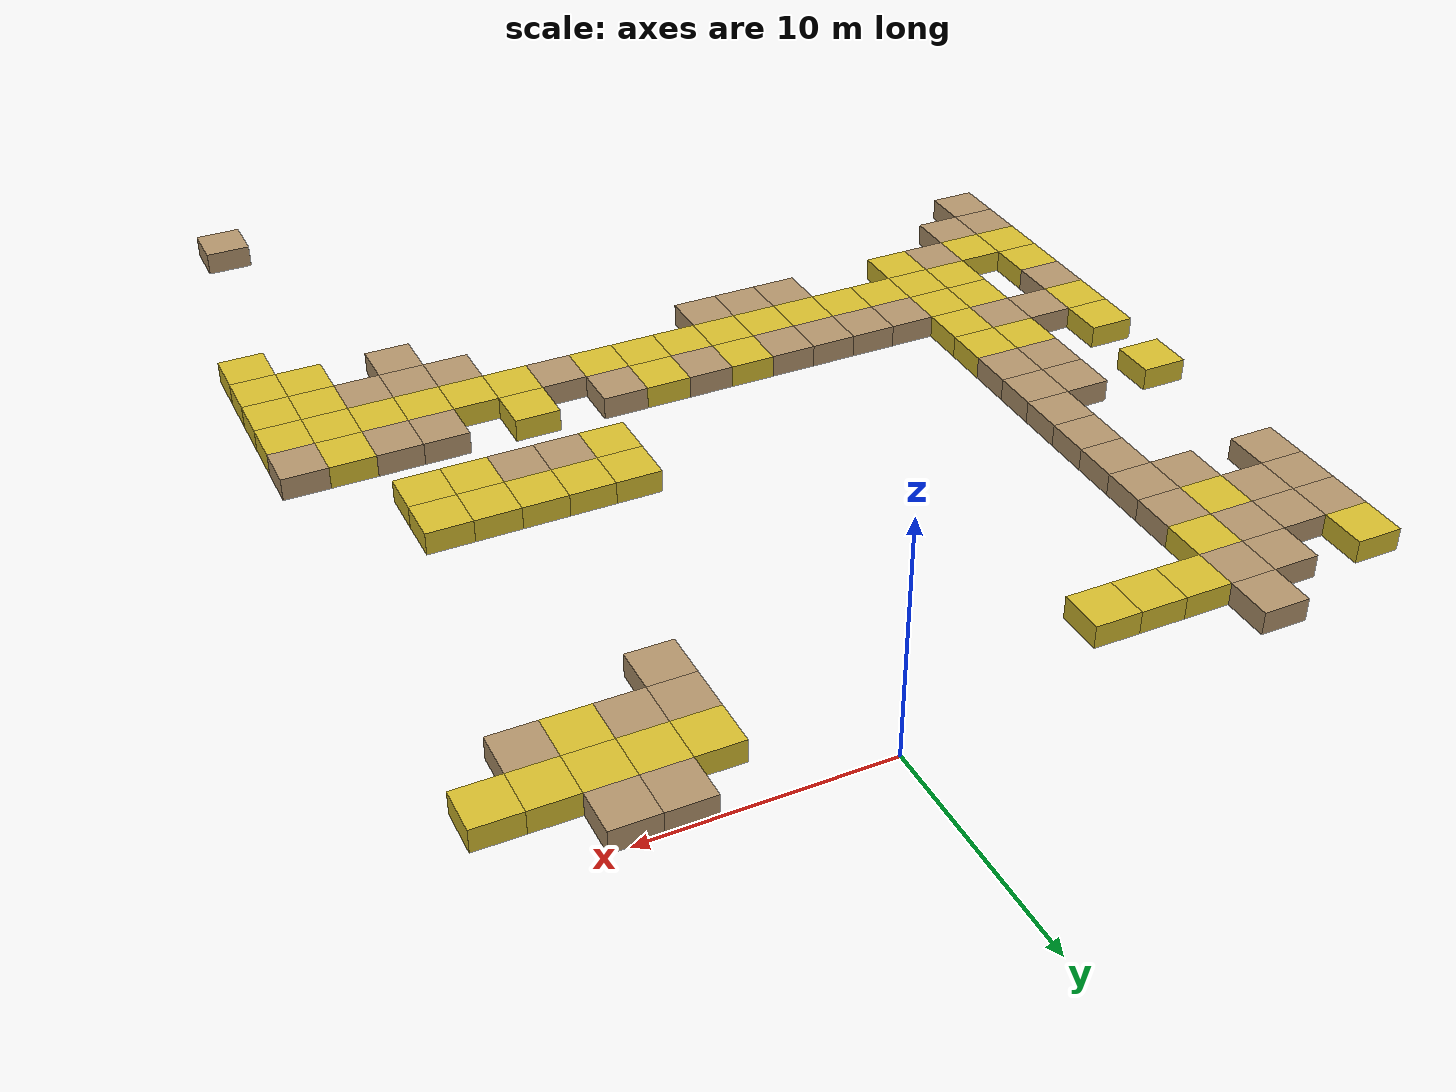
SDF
<sdf version="1.6">
 <world name="map5_factory_approx">
  <model name="map5_obstacle_blocks">
   <static>true</static>
   <link name="obs_0060_0031">
    <pose>11.790 -3.041 0.500 0 0 0</pose>
    <collision name="collision"><geometry><box><size>2.000 2.000 1.000</size></box></geometry></collision>
    <visual name="visual">
     <geometry><box><size>2.000 2.000 1.000</size></box></geometry>
     <material><ambient>0.84 0.74 0.18 1</ambient><diffuse>0.84 0.74 0.18 1</diffuse></material>
    </visual>
   </link>
   <link name="obs_0046_0040">
    <pose>-16.210 -21.041 0.500 0 0 0</pose>
    <collision name="collision"><geometry><box><size>2.000 2.000 1.000</size></box></geometry></collision>
    <visual name="visual">
     <geometry><box><size>2.000 2.000 1.000</size></box></geometry>
     <material><ambient>0.84 0.74 0.18 1</ambient><diffuse>0.84 0.74 0.18 1</diffuse></material>
    </visual>
   </link>
   <link name="obs_0058_0031">
    <pose>7.790 -3.041 0.500 0 0 0</pose>
    <collision name="collision"><geometry><box><size>2.000 2.000 1.000</size></box></geometry></collision>
    <visual name="visual">
     <geometry><box><size>2.000 2.000 1.000</size></box></geometry>
     <material><ambient>0.84 0.74 0.18 1</ambient><diffuse>0.84 0.74 0.18 1</diffuse></material>
    </visual>
   </link>
   <link name="obs_0061_0044">
    <pose>13.790 -29.041 0.500 0 0 0</pose>
    <collision name="collision"><geometry><box><size>2.000 2.000 1.000</size></box></geometry></collision>
    <visual name="visual">
     <geometry><box><size>2.000 2.000 1.000</size></box></geometry>
     <material><ambient>0.84 0.74 0.18 1</ambient><diffuse>0.84 0.74 0.18 1</diffuse></material>
    </visual>
   </link>
   <link name="obs_0051_0043">
    <pose>-6.210 -27.041 0.500 0 0 0</pose>
    <collision name="collision"><geometry><box><size>2.000 2.000 1.000</size></box></geometry></collision>
    <visual name="visual">
     <geometry><box><size>2.000 2.000 1.000</size></box></geometry>
     <material><ambient>0.84 0.74 0.18 1</ambient><diffuse>0.84 0.74 0.18 1</diffuse></material>
    </visual>
   </link>
   <link name="obs_0061_0043">
    <pose>13.790 -27.041 0.500 0 0 0</pose>
    <collision name="collision"><geometry><box><size>2.000 2.000 1.000</size></box></geometry></collision>
    <visual name="visual">
     <geometry><box><size>2.000 2.000 1.000</size></box></geometry>
     <material><ambient>0.84 0.74 0.18 1</ambient><diffuse>0.84 0.74 0.18 1</diffuse></material>
    </visual>
   </link>
   <link name="obs_0057_0031">
    <pose>5.790 -3.041 0.500 0 0 0</pose>
    <collision name="collision"><geometry><box><size>2.000 2.000 1.000</size></box></geometry></collision>
    <visual name="visual">
     <geometry><box><size>2.000 2.000 1.000</size></box></geometry>
     <material><ambient>0.84 0.74 0.18 1</ambient><diffuse>0.84 0.74 0.18 1</diffuse></material>
    </visual>
   </link>
   <link name="obs_0059_0039">
    <pose>9.790 -19.041 0.500 0 0 0</pose>
    <collision name="collision"><geometry><box><size>2.000 2.000 1.000</size></box></geometry></collision>
    <visual name="visual">
     <geometry><box><size>2.000 2.000 1.000</size></box></geometry>
     <material><ambient>0.84 0.74 0.18 1</ambient><diffuse>0.84 0.74 0.18 1</diffuse></material>
    </visual>
   </link>
   <link name="obs_0046_0041">
    <pose>-16.210 -23.041 0.500 0 0 0</pose>
    <collision name="collision"><geometry><box><size>2.000 2.000 1.000</size></box></geometry></collision>
    <visual name="visual">
     <geometry><box><size>2.000 2.000 1.000</size></box></geometry>
     <material><ambient>0.84 0.74 0.18 1</ambient><diffuse>0.84 0.74 0.18 1</diffuse></material>
    </visual>
   </link>
   <link name="obs_0056_0043">
    <pose>3.790 -27.041 0.500 0 0 0</pose>
    <collision name="collision"><geometry><box><size>2.000 2.000 1.000</size></box></geometry></collision>
    <visual name="visual">
     <geometry><box><size>2.000 2.000 1.000</size></box></geometry>
     <material><ambient>0.84 0.74 0.18 1</ambient><diffuse>0.84 0.74 0.18 1</diffuse></material>
    </visual>
   </link>
   <link name="obs_0061_0031">
    <pose>13.790 -3.041 0.500 0 0 0</pose>
    <collision name="collision"><geometry><box><size>2.000 2.000 1.000</size></box></geometry></collision>
    <visual name="visual">
     <geometry><box><size>2.000 2.000 1.000</size></box></geometry>
     <material><ambient>0.84 0.74 0.18 1</ambient><diffuse>0.84 0.74 0.18 1</diffuse></material>
    </visual>
   </link>
   <link name="obs_0059_0032">
    <pose>9.790 -5.041 0.500 0 0 0</pose>
    <collision name="collision"><geometry><box><size>2.000 2.000 1.000</size></box></geometry></collision>
    <visual name="visual">
     <geometry><box><size>2.000 2.000 1.000</size></box></geometry>
     <material><ambient>0.84 0.74 0.18 1</ambient><diffuse>0.84 0.74 0.18 1</diffuse></material>
    </visual>
   </link>
   <link name="obs_0058_0039">
    <pose>7.790 -19.041 0.500 0 0 0</pose>
    <collision name="collision"><geometry><box><size>2.000 2.000 1.000</size></box></geometry></collision>
    <visual name="visual">
     <geometry><box><size>2.000 2.000 1.000</size></box></geometry>
     <material><ambient>0.84 0.74 0.18 1</ambient><diffuse>0.84 0.74 0.18 1</diffuse></material>
    </visual>
   </link>
   <link name="obs_0060_0042">
    <pose>11.790 -25.041 0.500 0 0 0</pose>
    <collision name="collision"><geometry><box><size>2.000 2.000 1.000</size></box></geometry></collision>
    <visual name="visual">
     <geometry><box><size>2.000 2.000 1.000</size></box></geometry>
     <material><ambient>0.84 0.74 0.18 1</ambient><diffuse>0.84 0.74 0.18 1</diffuse></material>
    </visual>
   </link>
   <link name="obs_0059_0040">
    <pose>9.790 -21.041 0.500 0 0 0</pose>
    <collision name="collision"><geometry><box><size>2.000 2.000 1.000</size></box></geometry></collision>
    <visual name="visual">
     <geometry><box><size>2.000 2.000 1.000</size></box></geometry>
     <material><ambient>0.84 0.74 0.18 1</ambient><diffuse>0.84 0.74 0.18 1</diffuse></material>
    </visual>
   </link>
   <link name="obs_0053_0042">
    <pose>-2.210 -25.041 0.500 0 0 0</pose>
    <collision name="collision"><geometry><box><size>2.000 2.000 1.000</size></box></geometry></collision>
    <visual name="visual">
     <geometry><box><size>2.000 2.000 1.000</size></box></geometry>
     <material><ambient>0.84 0.74 0.18 1</ambient><diffuse>0.84 0.74 0.18 1</diffuse></material>
    </visual>
   </link>
   <link name="obs_0049_0031">
    <pose>-10.210 -3.041 0.500 0 0 0</pose>
    <collision name="collision"><geometry><box><size>2.000 2.000 1.000</size></box></geometry></collision>
    <visual name="visual">
     <geometry><box><size>2.000 2.000 1.000</size></box></geometry>
     <material><ambient>0.84 0.74 0.18 1</ambient><diffuse>0.84 0.74 0.18 1</diffuse></material>
    </visual>
   </link>
   <link name="obs_0047_0031">
    <pose>-14.210 -3.041 0.500 0 0 0</pose>
    <collision name="collision"><geometry><box><size>2.000 2.000 1.000</size></box></geometry></collision>
    <visual name="visual">
     <geometry><box><size>2.000 2.000 1.000</size></box></geometry>
     <material><ambient>0.84 0.74 0.18 1</ambient><diffuse>0.84 0.74 0.18 1</diffuse></material>
    </visual>
   </link>
   <link name="obs_0059_0043">
    <pose>9.790 -27.041 0.500 0 0 0</pose>
    <collision name="collision"><geometry><box><size>2.000 2.000 1.000</size></box></geometry></collision>
    <visual name="visual">
     <geometry><box><size>2.000 2.000 1.000</size></box></geometry>
     <material><ambient>0.84 0.74 0.18 1</ambient><diffuse>0.84 0.74 0.18 1</diffuse></material>
    </visual>
   </link>
   <link name="obs_0043_0044">
    <pose>-22.210 -29.041 0.500 0 0 0</pose>
    <collision name="collision"><geometry><box><size>2.000 2.000 1.000</size></box></geometry></collision>
    <visual name="visual">
     <geometry><box><size>2.000 2.000 1.000</size></box></geometry>
     <material><ambient>0.84 0.74 0.18 1</ambient><diffuse>0.84 0.74 0.18 1</diffuse></material>
    </visual>
   </link>
   <link name="obs_0047_0043">
    <pose>-14.210 -27.041 0.500 0 0 0</pose>
    <collision name="collision"><geometry><box><size>2.000 2.000 1.000</size></box></geometry></collision>
    <visual name="visual">
     <geometry><box><size>2.000 2.000 1.000</size></box></geometry>
     <material><ambient>0.84 0.74 0.18 1</ambient><diffuse>0.84 0.74 0.18 1</diffuse></material>
    </visual>
   </link>
   <link name="obs_0057_0043">
    <pose>5.790 -27.041 0.500 0 0 0</pose>
    <collision name="collision"><geometry><box><size>2.000 2.000 1.000</size></box></geometry></collision>
    <visual name="visual">
     <geometry><box><size>2.000 2.000 1.000</size></box></geometry>
     <material><ambient>0.84 0.74 0.18 1</ambient><diffuse>0.84 0.74 0.18 1</diffuse></material>
    </visual>
   </link>
   <link name="obs_0045_0040">
    <pose>-18.210 -21.041 0.500 0 0 0</pose>
    <collision name="collision"><geometry><box><size>2.000 2.000 1.000</size></box></geometry></collision>
    <visual name="visual">
     <geometry><box><size>2.000 2.000 1.000</size></box></geometry>
     <material><ambient>0.84 0.74 0.18 1</ambient><diffuse>0.84 0.74 0.18 1</diffuse></material>
    </visual>
   </link>
   <link name="obs_0059_0031">
    <pose>9.790 -3.041 0.500 0 0 0</pose>
    <collision name="collision"><geometry><box><size>2.000 2.000 1.000</size></box></geometry></collision>
    <visual name="visual">
     <geometry><box><size>2.000 2.000 1.000</size></box></geometry>
     <material><ambient>0.84 0.74 0.18 1</ambient><diffuse>0.84 0.74 0.18 1</diffuse></material>
    </visual>
   </link>
   <link name="obs_0055_0040">
    <pose>1.790 -21.041 0.500 0 0 0</pose>
    <collision name="collision"><geometry><box><size>2.000 2.000 1.000</size></box></geometry></collision>
    <visual name="visual">
     <geometry><box><size>2.000 2.000 1.000</size></box></geometry>
     <material><ambient>0.84 0.74 0.18 1</ambient><diffuse>0.84 0.74 0.18 1</diffuse></material>
    </visual>
   </link>
   <link name="obs_0056_0042">
    <pose>3.790 -25.041 0.500 0 0 0</pose>
    <collision name="collision"><geometry><box><size>2.000 2.000 1.000</size></box></geometry></collision>
    <visual name="visual">
     <geometry><box><size>2.000 2.000 1.000</size></box></geometry>
     <material><ambient>0.84 0.74 0.18 1</ambient><diffuse>0.84 0.74 0.18 1</diffuse></material>
    </visual>
   </link>
   <link name="obs_0051_0042">
    <pose>-6.210 -25.041 0.500 0 0 0</pose>
    <collision name="collision"><geometry><box><size>2.000 2.000 1.000</size></box></geometry></collision>
    <visual name="visual">
     <geometry><box><size>2.000 2.000 1.000</size></box></geometry>
     <material><ambient>0.84 0.74 0.18 1</ambient><diffuse>0.84 0.74 0.18 1</diffuse></material>
    </visual>
   </link>
   <link name="obs_0043_0043">
    <pose>-22.210 -27.041 0.500 0 0 0</pose>
    <collision name="collision"><geometry><box><size>2.000 2.000 1.000</size></box></geometry></collision>
    <visual name="visual">
     <geometry><box><size>2.000 2.000 1.000</size></box></geometry>
     <material><ambient>0.84 0.74 0.18 1</ambient><diffuse>0.84 0.74 0.18 1</diffuse></material>
    </visual>
   </link>
   <link name="obs_0045_0033">
    <pose>-18.210 -7.041 0.500 0 0 0</pose>
    <collision name="collision"><geometry><box><size>2.000 2.000 1.000</size></box></geometry></collision>
    <visual name="visual">
     <geometry><box><size>2.000 2.000 1.000</size></box></geometry>
     <material><ambient>0.84 0.74 0.18 1</ambient><diffuse>0.84 0.74 0.18 1</diffuse></material>
    </visual>
   </link>
   <link name="obs_0049_0043">
    <pose>-10.210 -27.041 0.500 0 0 0</pose>
    <collision name="collision"><geometry><box><size>2.000 2.000 1.000</size></box></geometry></collision>
    <visual name="visual">
     <geometry><box><size>2.000 2.000 1.000</size></box></geometry>
     <material><ambient>0.84 0.74 0.18 1</ambient><diffuse>0.84 0.74 0.18 1</diffuse></material>
    </visual>
   </link>
   <link name="obs_0060_0043">
    <pose>11.790 -27.041 0.500 0 0 0</pose>
    <collision name="collision"><geometry><box><size>2.000 2.000 1.000</size></box></geometry></collision>
    <visual name="visual">
     <geometry><box><size>2.000 2.000 1.000</size></box></geometry>
     <material><ambient>0.84 0.74 0.18 1</ambient><diffuse>0.84 0.74 0.18 1</diffuse></material>
    </visual>
   </link>
   <link name="obs_0058_0040">
    <pose>7.790 -21.041 0.500 0 0 0</pose>
    <collision name="collision"><geometry><box><size>2.000 2.000 1.000</size></box></geometry></collision>
    <visual name="visual">
     <geometry><box><size>2.000 2.000 1.000</size></box></geometry>
     <material><ambient>0.84 0.74 0.18 1</ambient><diffuse>0.84 0.74 0.18 1</diffuse></material>
    </visual>
   </link>
   <link name="obs_0053_0043">
    <pose>-2.210 -27.041 0.500 0 0 0</pose>
    <collision name="collision"><geometry><box><size>2.000 2.000 1.000</size></box></geometry></collision>
    <visual name="visual">
     <geometry><box><size>2.000 2.000 1.000</size></box></geometry>
     <material><ambient>0.84 0.74 0.18 1</ambient><diffuse>0.84 0.74 0.18 1</diffuse></material>
    </visual>
   </link>
   <link name="obs_0043_0031">
    <pose>-22.210 -3.041 0.500 0 0 0</pose>
    <collision name="collision"><geometry><box><size>2.000 2.000 1.000</size></box></geometry></collision>
    <visual name="visual">
     <geometry><box><size>2.000 2.000 1.000</size></box></geometry>
     <material><ambient>0.84 0.74 0.18 1</ambient><diffuse>0.84 0.74 0.18 1</diffuse></material>
    </visual>
   </link>
   <link name="obs_0060_0045">
    <pose>11.790 -31.041 0.500 0 0 0</pose>
    <collision name="collision"><geometry><box><size>2.000 2.000 1.000</size></box></geometry></collision>
    <visual name="visual">
     <geometry><box><size>2.000 2.000 1.000</size></box></geometry>
     <material><ambient>0.84 0.74 0.18 1</ambient><diffuse>0.84 0.74 0.18 1</diffuse></material>
    </visual>
   </link>
   <link name="obs_0043_0040">
    <pose>-22.210 -21.041 0.500 0 0 0</pose>
    <collision name="collision"><geometry><box><size>2.000 2.000 1.000</size></box></geometry></collision>
    <visual name="visual">
     <geometry><box><size>2.000 2.000 1.000</size></box></geometry>
     <material><ambient>0.84 0.74 0.18 1</ambient><diffuse>0.84 0.74 0.18 1</diffuse></material>
    </visual>
   </link>
   <link name="obs_0055_0039">
    <pose>1.790 -19.041 0.500 0 0 0</pose>
    <collision name="collision"><geometry><box><size>2.000 2.000 1.000</size></box></geometry></collision>
    <visual name="visual">
     <geometry><box><size>2.000 2.000 1.000</size></box></geometry>
     <material><ambient>0.84 0.74 0.18 1</ambient><diffuse>0.84 0.74 0.18 1</diffuse></material>
    </visual>
   </link>
   <link name="obs_0046_0043">
    <pose>-16.210 -27.041 0.500 0 0 0</pose>
    <collision name="collision"><geometry><box><size>2.000 2.000 1.000</size></box></geometry></collision>
    <visual name="visual">
     <geometry><box><size>2.000 2.000 1.000</size></box></geometry>
     <material><ambient>0.84 0.74 0.18 1</ambient><diffuse>0.84 0.74 0.18 1</diffuse></material>
    </visual>
   </link>
   <link name="obs_0061_0046">
    <pose>13.790 -33.041 0.500 0 0 0</pose>
    <collision name="collision"><geometry><box><size>2.000 2.000 1.000</size></box></geometry></collision>
    <visual name="visual">
     <geometry><box><size>2.000 2.000 1.000</size></box></geometry>
     <material><ambient>0.84 0.74 0.18 1</ambient><diffuse>0.84 0.74 0.18 1</diffuse></material>
    </visual>
   </link>
   <link name="obs_0048_0031">
    <pose>-12.210 -3.041 0.500 0 0 0</pose>
    <collision name="collision"><geometry><box><size>2.000 2.000 1.000</size></box></geometry></collision>
    <visual name="visual">
     <geometry><box><size>2.000 2.000 1.000</size></box></geometry>
     <material><ambient>0.84 0.74 0.18 1</ambient><diffuse>0.84 0.74 0.18 1</diffuse></material>
    </visual>
   </link>
   <link name="obs_0056_0039">
    <pose>3.790 -19.041 0.500 0 0 0</pose>
    <collision name="collision"><geometry><box><size>2.000 2.000 1.000</size></box></geometry></collision>
    <visual name="visual">
     <geometry><box><size>2.000 2.000 1.000</size></box></geometry>
     <material><ambient>0.84 0.74 0.18 1</ambient><diffuse>0.84 0.74 0.18 1</diffuse></material>
    </visual>
   </link>
   <link name="obs_0060_0044">
    <pose>11.790 -29.041 0.500 0 0 0</pose>
    <collision name="collision"><geometry><box><size>2.000 2.000 1.000</size></box></geometry></collision>
    <visual name="visual">
     <geometry><box><size>2.000 2.000 1.000</size></box></geometry>
     <material><ambient>0.84 0.74 0.18 1</ambient><diffuse>0.84 0.74 0.18 1</diffuse></material>
    </visual>
   </link>
   <link name="obs_0043_0041">
    <pose>-22.210 -23.041 0.500 0 0 0</pose>
    <collision name="collision"><geometry><box><size>2.000 2.000 1.000</size></box></geometry></collision>
    <visual name="visual">
     <geometry><box><size>2.000 2.000 1.000</size></box></geometry>
     <material><ambient>0.84 0.74 0.18 1</ambient><diffuse>0.84 0.74 0.18 1</diffuse></material>
    </visual>
   </link>
   <link name="obs_0052_0043">
    <pose>-4.210 -27.041 0.500 0 0 0</pose>
    <collision name="collision"><geometry><box><size>2.000 2.000 1.000</size></box></geometry></collision>
    <visual name="visual">
     <geometry><box><size>2.000 2.000 1.000</size></box></geometry>
     <material><ambient>0.84 0.74 0.18 1</ambient><diffuse>0.84 0.74 0.18 1</diffuse></material>
    </visual>
   </link>
   <link name="obs_0046_0044">
    <pose>-16.210 -29.041 0.500 0 0 0</pose>
    <collision name="collision"><geometry><box><size>2.000 2.000 1.000</size></box></geometry></collision>
    <visual name="visual">
     <geometry><box><size>2.000 2.000 1.000</size></box></geometry>
     <material><ambient>0.84 0.74 0.18 1</ambient><diffuse>0.84 0.74 0.18 1</diffuse></material>
    </visual>
   </link>
   <link name="obs_0045_0043">
    <pose>-18.210 -27.041 0.500 0 0 0</pose>
    <collision name="collision"><geometry><box><size>2.000 2.000 1.000</size></box></geometry></collision>
    <visual name="visual">
     <geometry><box><size>2.000 2.000 1.000</size></box></geometry>
     <material><ambient>0.84 0.74 0.18 1</ambient><diffuse>0.84 0.74 0.18 1</diffuse></material>
    </visual>
   </link>
   <link name="obs_0048_0043">
    <pose>-12.210 -27.041 0.500 0 0 0</pose>
    <collision name="collision"><geometry><box><size>2.000 2.000 1.000</size></box></geometry></collision>
    <visual name="visual">
     <geometry><box><size>2.000 2.000 1.000</size></box></geometry>
     <material><ambient>0.84 0.74 0.18 1</ambient><diffuse>0.84 0.74 0.18 1</diffuse></material>
    </visual>
   </link>
   <link name="obs_0054_0043">
    <pose>-0.210 -27.041 0.500 0 0 0</pose>
    <collision name="collision"><geometry><box><size>2.000 2.000 1.000</size></box></geometry></collision>
    <visual name="visual">
     <geometry><box><size>2.000 2.000 1.000</size></box></geometry>
     <material><ambient>0.84 0.74 0.18 1</ambient><diffuse>0.84 0.74 0.18 1</diffuse></material>
    </visual>
   </link>
   <link name="obs_0046_0042">
    <pose>-16.210 -25.041 0.500 0 0 0</pose>
    <collision name="collision"><geometry><box><size>2.000 2.000 1.000</size></box></geometry></collision>
    <visual name="visual">
     <geometry><box><size>2.000 2.000 1.000</size></box></geometry>
     <material><ambient>0.84 0.74 0.18 1</ambient><diffuse>0.84 0.74 0.18 1</diffuse></material>
    </visual>
   </link>
   <link name="obs_0044_0044">
    <pose>-20.210 -29.041 0.500 0 0 0</pose>
    <collision name="collision"><geometry><box><size>2.000 2.000 1.000</size></box></geometry></collision>
    <visual name="visual">
     <geometry><box><size>2.000 2.000 1.000</size></box></geometry>
     <material><ambient>0.84 0.74 0.18 1</ambient><diffuse>0.84 0.74 0.18 1</diffuse></material>
    </visual>
   </link>
   <link name="obs_0043_0038">
    <pose>-22.210 -17.041 0.500 0 0 0</pose>
    <collision name="collision"><geometry><box><size>2.000 2.000 1.000</size></box></geometry></collision>
    <visual name="visual">
     <geometry><box><size>2.000 2.000 1.000</size></box></geometry>
     <material><ambient>0.84 0.74 0.18 1</ambient><diffuse>0.84 0.74 0.18 1</diffuse></material>
    </visual>
   </link>
   <link name="obs_0057_0039">
    <pose>5.790 -19.041 0.500 0 0 0</pose>
    <collision name="collision"><geometry><box><size>2.000 2.000 1.000</size></box></geometry></collision>
    <visual name="visual">
     <geometry><box><size>2.000 2.000 1.000</size></box></geometry>
     <material><ambient>0.84 0.74 0.18 1</ambient><diffuse>0.84 0.74 0.18 1</diffuse></material>
    </visual>
   </link>
   <link name="obs_0058_0043">
    <pose>7.790 -27.041 0.500 0 0 0</pose>
    <collision name="collision"><geometry><box><size>2.000 2.000 1.000</size></box></geometry></collision>
    <visual name="visual">
     <geometry><box><size>2.000 2.000 1.000</size></box></geometry>
     <material><ambient>0.84 0.74 0.18 1</ambient><diffuse>0.84 0.74 0.18 1</diffuse></material>
    </visual>
   </link>
   <link name="obs_0046_0032">
    <pose>-16.210 -5.041 0.500 0 0 0</pose>
    <collision name="collision"><geometry><box><size>2.000 2.000 1.000</size></box></geometry></collision>
    <visual name="visual">
     <geometry><box><size>2.000 2.000 1.000</size></box></geometry>
     <material><ambient>0.84 0.74 0.18 1</ambient><diffuse>0.84 0.74 0.18 1</diffuse></material>
    </visual>
   </link>
   <link name="obs_0061_0045">
    <pose>13.790 -31.041 0.500 0 0 0</pose>
    <collision name="collision"><geometry><box><size>2.000 2.000 1.000</size></box></geometry></collision>
    <visual name="visual">
     <geometry><box><size>2.000 2.000 1.000</size></box></geometry>
     <material><ambient>0.84 0.74 0.18 1</ambient><diffuse>0.84 0.74 0.18 1</diffuse></material>
    </visual>
   </link>
   <link name="obs_0050_0043">
    <pose>-8.210 -27.041 0.500 0 0 0</pose>
    <collision name="collision"><geometry><box><size>2.000 2.000 1.000</size></box></geometry></collision>
    <visual name="visual">
     <geometry><box><size>2.000 2.000 1.000</size></box></geometry>
     <material><ambient>0.84 0.74 0.18 1</ambient><diffuse>0.84 0.74 0.18 1</diffuse></material>
    </visual>
   </link>
   <link name="obs_0045_0042">
    <pose>-18.210 -25.041 0.500 0 0 0</pose>
    <collision name="collision"><geometry><box><size>2.000 2.000 1.000</size></box></geometry></collision>
    <visual name="visual">
     <geometry><box><size>2.000 2.000 1.000</size></box></geometry>
     <material><ambient>0.84 0.74 0.18 1</ambient><diffuse>0.84 0.74 0.18 1</diffuse></material>
    </visual>
   </link>
   <link name="obs_0046_0031">
    <pose>-16.210 -3.041 0.500 0 0 0</pose>
    <collision name="collision"><geometry><box><size>2.000 2.000 1.000</size></box></geometry></collision>
    <visual name="visual">
     <geometry><box><size>2.000 2.000 1.000</size></box></geometry>
     <material><ambient>0.70 0.58 0.42 1</ambient><diffuse>0.70 0.58 0.42 1</diffuse></material>
    </visual>
   </link>
   <link name="obs_0046_0030">
    <pose>-16.210 -1.041 0.500 0 0 0</pose>
    <collision name="collision"><geometry><box><size>2.000 2.000 1.000</size></box></geometry></collision>
    <visual name="visual">
     <geometry><box><size>2.000 2.000 1.000</size></box></geometry>
     <material><ambient>0.70 0.58 0.42 1</ambient><diffuse>0.70 0.58 0.42 1</diffuse></material>
    </visual>
   </link>
   <link name="obs_0045_0032">
    <pose>-18.210 -5.041 0.500 0 0 0</pose>
    <collision name="collision"><geometry><box><size>2.000 2.000 1.000</size></box></geometry></collision>
    <visual name="visual">
     <geometry><box><size>2.000 2.000 1.000</size></box></geometry>
     <material><ambient>0.70 0.58 0.42 1</ambient><diffuse>0.70 0.58 0.42 1</diffuse></material>
    </visual>
   </link>
   <link name="obs_0055_0043">
    <pose>1.790 -27.041 0.500 0 0 0</pose>
    <collision name="collision"><geometry><box><size>2.000 2.000 1.000</size></box></geometry></collision>
    <visual name="visual">
     <geometry><box><size>2.000 2.000 1.000</size></box></geometry>
     <material><ambient>0.70 0.58 0.42 1</ambient><diffuse>0.70 0.58 0.42 1</diffuse></material>
    </visual>
   </link>
   <link name="obs_0061_0042">
    <pose>13.790 -25.041 0.500 0 0 0</pose>
    <collision name="collision"><geometry><box><size>2.000 2.000 1.000</size></box></geometry></collision>
    <visual name="visual">
     <geometry><box><size>2.000 2.000 1.000</size></box></geometry>
     <material><ambient>0.70 0.58 0.42 1</ambient><diffuse>0.70 0.58 0.42 1</diffuse></material>
    </visual>
   </link>
   <link name="obs_0059_0042">
    <pose>9.790 -25.041 0.500 0 0 0</pose>
    <collision name="collision"><geometry><box><size>2.000 2.000 1.000</size></box></geometry></collision>
    <visual name="visual">
     <geometry><box><size>2.000 2.000 1.000</size></box></geometry>
     <material><ambient>0.70 0.58 0.42 1</ambient><diffuse>0.70 0.58 0.42 1</diffuse></material>
    </visual>
   </link>
   <link name="obs_0058_0042">
    <pose>7.790 -25.041 0.500 0 0 0</pose>
    <collision name="collision"><geometry><box><size>2.000 2.000 1.000</size></box></geometry></collision>
    <visual name="visual">
     <geometry><box><size>2.000 2.000 1.000</size></box></geometry>
     <material><ambient>0.70 0.58 0.42 1</ambient><diffuse>0.70 0.58 0.42 1</diffuse></material>
    </visual>
   </link>
   <link name="obs_0056_0040">
    <pose>3.790 -21.041 0.500 0 0 0</pose>
    <collision name="collision"><geometry><box><size>2.000 2.000 1.000</size></box></geometry></collision>
    <visual name="visual">
     <geometry><box><size>2.000 2.000 1.000</size></box></geometry>
     <material><ambient>0.70 0.58 0.42 1</ambient><diffuse>0.70 0.58 0.42 1</diffuse></material>
    </visual>
   </link>
   <link name="obs_0046_0038">
    <pose>-16.210 -17.041 0.500 0 0 0</pose>
    <collision name="collision"><geometry><box><size>2.000 2.000 1.000</size></box></geometry></collision>
    <visual name="visual">
     <geometry><box><size>2.000 2.000 1.000</size></box></geometry>
     <material><ambient>0.70 0.58 0.42 1</ambient><diffuse>0.70 0.58 0.42 1</diffuse></material>
    </visual>
   </link>
   <link name="obs_0058_0032">
    <pose>7.790 -5.041 0.500 0 0 0</pose>
    <collision name="collision"><geometry><box><size>2.000 2.000 1.000</size></box></geometry></collision>
    <visual name="visual">
     <geometry><box><size>2.000 2.000 1.000</size></box></geometry>
     <material><ambient>0.70 0.58 0.42 1</ambient><diffuse>0.70 0.58 0.42 1</diffuse></material>
    </visual>
   </link>
   <link name="obs_0044_0033">
    <pose>-20.210 -7.041 0.500 0 0 0</pose>
    <collision name="collision"><geometry><box><size>2.000 2.000 1.000</size></box></geometry></collision>
    <visual name="visual">
     <geometry><box><size>2.000 2.000 1.000</size></box></geometry>
     <material><ambient>0.70 0.58 0.42 1</ambient><diffuse>0.70 0.58 0.42 1</diffuse></material>
    </visual>
   </link>
   <link name="obs_0057_0040">
    <pose>5.790 -21.041 0.500 0 0 0</pose>
    <collision name="collision"><geometry><box><size>2.000 2.000 1.000</size></box></geometry></collision>
    <visual name="visual">
     <geometry><box><size>2.000 2.000 1.000</size></box></geometry>
     <material><ambient>0.70 0.58 0.42 1</ambient><diffuse>0.70 0.58 0.42 1</diffuse></material>
    </visual>
   </link>
   <link name="obs_0059_0030">
    <pose>9.790 -1.041 0.500 0 0 0</pose>
    <collision name="collision"><geometry><box><size>2.000 2.000 1.000</size></box></geometry></collision>
    <visual name="visual">
     <geometry><box><size>2.000 2.000 1.000</size></box></geometry>
     <material><ambient>0.70 0.58 0.42 1</ambient><diffuse>0.70 0.58 0.42 1</diffuse></material>
    </visual>
   </link>
   <link name="obs_0052_0042">
    <pose>-4.210 -25.041 0.500 0 0 0</pose>
    <collision name="collision"><geometry><box><size>2.000 2.000 1.000</size></box></geometry></collision>
    <visual name="visual">
     <geometry><box><size>2.000 2.000 1.000</size></box></geometry>
     <material><ambient>0.70 0.58 0.42 1</ambient><diffuse>0.70 0.58 0.42 1</diffuse></material>
    </visual>
   </link>
   <link name="obs_0049_0042">
    <pose>-10.210 -25.041 0.500 0 0 0</pose>
    <collision name="collision"><geometry><box><size>2.000 2.000 1.000</size></box></geometry></collision>
    <visual name="visual">
     <geometry><box><size>2.000 2.000 1.000</size></box></geometry>
     <material><ambient>0.70 0.58 0.42 1</ambient><diffuse>0.70 0.58 0.42 1</diffuse></material>
    </visual>
   </link>
   <link name="obs_0043_0042">
    <pose>-22.210 -25.041 0.500 0 0 0</pose>
    <collision name="collision"><geometry><box><size>2.000 2.000 1.000</size></box></geometry></collision>
    <visual name="visual">
     <geometry><box><size>2.000 2.000 1.000</size></box></geometry>
     <material><ambient>0.70 0.58 0.42 1</ambient><diffuse>0.70 0.58 0.42 1</diffuse></material>
    </visual>
   </link>
   <link name="obs_0054_0042">
    <pose>-0.210 -25.041 0.500 0 0 0</pose>
    <collision name="collision"><geometry><box><size>2.000 2.000 1.000</size></box></geometry></collision>
    <visual name="visual">
     <geometry><box><size>2.000 2.000 1.000</size></box></geometry>
     <material><ambient>0.70 0.58 0.42 1</ambient><diffuse>0.70 0.58 0.42 1</diffuse></material>
    </visual>
   </link>
   <link name="obs_0044_0032">
    <pose>-20.210 -5.041 0.500 0 0 0</pose>
    <collision name="collision"><geometry><box><size>2.000 2.000 1.000</size></box></geometry></collision>
    <visual name="visual">
     <geometry><box><size>2.000 2.000 1.000</size></box></geometry>
     <material><ambient>0.70 0.58 0.42 1</ambient><diffuse>0.70 0.58 0.42 1</diffuse></material>
    </visual>
   </link>
   <link name="obs_0047_0042">
    <pose>-14.210 -25.041 0.500 0 0 0</pose>
    <collision name="collision"><geometry><box><size>2.000 2.000 1.000</size></box></geometry></collision>
    <visual name="visual">
     <geometry><box><size>2.000 2.000 1.000</size></box></geometry>
     <material><ambient>0.70 0.58 0.42 1</ambient><diffuse>0.70 0.58 0.42 1</diffuse></material>
    </visual>
   </link>
   <link name="obs_0045_0038">
    <pose>-18.210 -17.041 0.500 0 0 0</pose>
    <collision name="collision"><geometry><box><size>2.000 2.000 1.000</size></box></geometry></collision>
    <visual name="visual">
     <geometry><box><size>2.000 2.000 1.000</size></box></geometry>
     <material><ambient>0.70 0.58 0.42 1</ambient><diffuse>0.70 0.58 0.42 1</diffuse></material>
    </visual>
   </link>
   <link name="obs_0048_0042">
    <pose>-12.210 -25.041 0.500 0 0 0</pose>
    <collision name="collision"><geometry><box><size>2.000 2.000 1.000</size></box></geometry></collision>
    <visual name="visual">
     <geometry><box><size>2.000 2.000 1.000</size></box></geometry>
     <material><ambient>0.70 0.58 0.42 1</ambient><diffuse>0.70 0.58 0.42 1</diffuse></material>
    </visual>
   </link>
   <link name="obs_0045_0039">
    <pose>-18.210 -19.041 0.500 0 0 0</pose>
    <collision name="collision"><geometry><box><size>2.000 2.000 1.000</size></box></geometry></collision>
    <visual name="visual">
     <geometry><box><size>2.000 2.000 1.000</size></box></geometry>
     <material><ambient>0.70 0.58 0.42 1</ambient><diffuse>0.70 0.58 0.42 1</diffuse></material>
    </visual>
   </link>
   <link name="obs_0051_0044">
    <pose>-6.210 -29.041 0.500 0 0 0</pose>
    <collision name="collision"><geometry><box><size>2.000 2.000 1.000</size></box></geometry></collision>
    <visual name="visual">
     <geometry><box><size>2.000 2.000 1.000</size></box></geometry>
     <material><ambient>0.70 0.58 0.42 1</ambient><diffuse>0.70 0.58 0.42 1</diffuse></material>
    </visual>
   </link>
   <link name="obs_0046_0036">
    <pose>-16.210 -13.041 0.500 0 0 0</pose>
    <collision name="collision"><geometry><box><size>2.000 2.000 1.000</size></box></geometry></collision>
    <visual name="visual">
     <geometry><box><size>2.000 2.000 1.000</size></box></geometry>
     <material><ambient>0.70 0.58 0.42 1</ambient><diffuse>0.70 0.58 0.42 1</diffuse></material>
    </visual>
   </link>
   <link name="obs_0058_0030">
    <pose>7.790 -1.041 0.500 0 0 0</pose>
    <collision name="collision"><geometry><box><size>2.000 2.000 1.000</size></box></geometry></collision>
    <visual name="visual">
     <geometry><box><size>2.000 2.000 1.000</size></box></geometry>
     <material><ambient>0.70 0.58 0.42 1</ambient><diffuse>0.70 0.58 0.42 1</diffuse></material>
    </visual>
   </link>
   <link name="obs_0046_0037">
    <pose>-16.210 -15.041 0.500 0 0 0</pose>
    <collision name="collision"><geometry><box><size>2.000 2.000 1.000</size></box></geometry></collision>
    <visual name="visual">
     <geometry><box><size>2.000 2.000 1.000</size></box></geometry>
     <material><ambient>0.70 0.58 0.42 1</ambient><diffuse>0.70 0.58 0.42 1</diffuse></material>
    </visual>
   </link>
   <link name="obs_0046_0035">
    <pose>-16.210 -11.041 0.500 0 0 0</pose>
    <collision name="collision"><geometry><box><size>2.000 2.000 1.000</size></box></geometry></collision>
    <visual name="visual">
     <geometry><box><size>2.000 2.000 1.000</size></box></geometry>
     <material><ambient>0.70 0.58 0.42 1</ambient><diffuse>0.70 0.58 0.42 1</diffuse></material>
    </visual>
   </link>
   <link name="obs_0045_0034">
    <pose>-18.210 -9.041 0.500 0 0 0</pose>
    <collision name="collision"><geometry><box><size>2.000 2.000 1.000</size></box></geometry></collision>
    <visual name="visual">
     <geometry><box><size>2.000 2.000 1.000</size></box></geometry>
     <material><ambient>0.70 0.58 0.42 1</ambient><diffuse>0.70 0.58 0.42 1</diffuse></material>
    </visual>
   </link>
   <link name="obs_0050_0044">
    <pose>-8.210 -29.041 0.500 0 0 0</pose>
    <collision name="collision"><geometry><box><size>2.000 2.000 1.000</size></box></geometry></collision>
    <visual name="visual">
     <geometry><box><size>2.000 2.000 1.000</size></box></geometry>
     <material><ambient>0.70 0.58 0.42 1</ambient><diffuse>0.70 0.58 0.42 1</diffuse></material>
    </visual>
   </link>
   <link name="obs_0046_0033">
    <pose>-16.210 -7.041 0.500 0 0 0</pose>
    <collision name="collision"><geometry><box><size>2.000 2.000 1.000</size></box></geometry></collision>
    <visual name="visual">
     <geometry><box><size>2.000 2.000 1.000</size></box></geometry>
     <material><ambient>0.70 0.58 0.42 1</ambient><diffuse>0.70 0.58 0.42 1</diffuse></material>
    </visual>
   </link>
   <link name="obs_0043_0033">
    <pose>-22.210 -7.041 0.500 0 0 0</pose>
    <collision name="collision"><geometry><box><size>2.000 2.000 1.000</size></box></geometry></collision>
    <visual name="visual">
     <geometry><box><size>2.000 2.000 1.000</size></box></geometry>
     <material><ambient>0.70 0.58 0.42 1</ambient><diffuse>0.70 0.58 0.42 1</diffuse></material>
    </visual>
   </link>
   <link name="obs_0060_0032">
    <pose>11.790 -5.041 0.500 0 0 0</pose>
    <collision name="collision"><geometry><box><size>2.000 2.000 1.000</size></box></geometry></collision>
    <visual name="visual">
     <geometry><box><size>2.000 2.000 1.000</size></box></geometry>
     <material><ambient>0.70 0.58 0.42 1</ambient><diffuse>0.70 0.58 0.42 1</diffuse></material>
    </visual>
   </link>
   <link name="obs_0050_0042">
    <pose>-8.210 -25.041 0.500 0 0 0</pose>
    <collision name="collision"><geometry><box><size>2.000 2.000 1.000</size></box></geometry></collision>
    <visual name="visual">
     <geometry><box><size>2.000 2.000 1.000</size></box></geometry>
     <material><ambient>0.70 0.58 0.42 1</ambient><diffuse>0.70 0.58 0.42 1</diffuse></material>
    </visual>
   </link>
   <link name="obs_0043_0046">
    <pose>-22.210 -33.041 0.500 0 0 0</pose>
    <collision name="collision"><geometry><box><size>2.000 2.000 1.000</size></box></geometry></collision>
    <visual name="visual">
     <geometry><box><size>2.000 2.000 1.000</size></box></geometry>
     <material><ambient>0.70 0.58 0.42 1</ambient><diffuse>0.70 0.58 0.42 1</diffuse></material>
    </visual>
   </link>
   <link name="obs_0046_0034">
    <pose>-16.210 -9.041 0.500 0 0 0</pose>
    <collision name="collision"><geometry><box><size>2.000 2.000 1.000</size></box></geometry></collision>
    <visual name="visual">
     <geometry><box><size>2.000 2.000 1.000</size></box></geometry>
     <material><ambient>0.70 0.58 0.42 1</ambient><diffuse>0.70 0.58 0.42 1</diffuse></material>
    </visual>
   </link>
   <link name="obs_0043_0045">
    <pose>-22.210 -31.041 0.500 0 0 0</pose>
    <collision name="collision"><geometry><box><size>2.000 2.000 1.000</size></box></geometry></collision>
    <visual name="visual">
     <geometry><box><size>2.000 2.000 1.000</size></box></geometry>
     <material><ambient>0.70 0.58 0.42 1</ambient><diffuse>0.70 0.58 0.42 1</diffuse></material>
    </visual>
   </link>
   <link name="obs_0043_0034">
    <pose>-22.210 -9.041 0.500 0 0 0</pose>
    <collision name="collision"><geometry><box><size>2.000 2.000 1.000</size></box></geometry></collision>
    <visual name="visual">
     <geometry><box><size>2.000 2.000 1.000</size></box></geometry>
     <material><ambient>0.70 0.58 0.42 1</ambient><diffuse>0.70 0.58 0.42 1</diffuse></material>
    </visual>
   </link>
   <link name="obs_0060_0052">
    <pose>11.790 -45.041 0.500 0 0 0</pose>
    <collision name="collision"><geometry><box><size>2.000 2.000 1.000</size></box></geometry></collision>
    <visual name="visual">
     <geometry><box><size>2.000 2.000 1.000</size></box></geometry>
     <material><ambient>0.70 0.58 0.42 1</ambient><diffuse>0.70 0.58 0.42 1</diffuse></material>
    </visual>
   </link>
   <link name="obs_0057_0032">
    <pose>5.790 -5.041 0.500 0 0 0</pose>
    <collision name="collision"><geometry><box><size>2.000 2.000 1.000</size></box></geometry></collision>
    <visual name="visual">
     <geometry><box><size>2.000 2.000 1.000</size></box></geometry>
     <material><ambient>0.70 0.58 0.42 1</ambient><diffuse>0.70 0.58 0.42 1</diffuse></material>
    </visual>
   </link>
   <link name="obs_0044_0041">
    <pose>-20.210 -23.041 0.500 0 0 0</pose>
    <collision name="collision"><geometry><box><size>2.000 2.000 1.000</size></box></geometry></collision>
    <visual name="visual">
     <geometry><box><size>2.000 2.000 1.000</size></box></geometry>
     <material><ambient>0.70 0.58 0.42 1</ambient><diffuse>0.70 0.58 0.42 1</diffuse></material>
    </visual>
   </link>
   <link name="obs_0049_0044">
    <pose>-10.210 -29.041 0.500 0 0 0</pose>
    <collision name="collision"><geometry><box><size>2.000 2.000 1.000</size></box></geometry></collision>
    <visual name="visual">
     <geometry><box><size>2.000 2.000 1.000</size></box></geometry>
     <material><ambient>0.70 0.58 0.42 1</ambient><diffuse>0.70 0.58 0.42 1</diffuse></material>
    </visual>
   </link>
   <link name="obs_0043_0032">
    <pose>-22.210 -5.041 0.500 0 0 0</pose>
    <collision name="collision"><geometry><box><size>2.000 2.000 1.000</size></box></geometry></collision>
    <visual name="visual">
     <geometry><box><size>2.000 2.000 1.000</size></box></geometry>
     <material><ambient>0.70 0.58 0.42 1</ambient><diffuse>0.70 0.58 0.42 1</diffuse></material>
    </visual>
   </link>
   <link name="obs_0058_0044">
    <pose>7.790 -29.041 0.500 0 0 0</pose>
    <collision name="collision"><geometry><box><size>2.000 2.000 1.000</size></box></geometry></collision>
    <visual name="visual">
     <geometry><box><size>2.000 2.000 1.000</size></box></geometry>
     <material><ambient>0.70 0.58 0.42 1</ambient><diffuse>0.70 0.58 0.42 1</diffuse></material>
    </visual>
   </link>
   <link name="obs_0057_0033">
    <pose>5.790 -7.041 0.500 0 0 0</pose>
    <collision name="collision"><geometry><box><size>2.000 2.000 1.000</size></box></geometry></collision>
    <visual name="visual">
     <geometry><box><size>2.000 2.000 1.000</size></box></geometry>
     <material><ambient>0.70 0.58 0.42 1</ambient><diffuse>0.70 0.58 0.42 1</diffuse></material>
    </visual>
   </link>
   <link name="obs_0045_0044">
    <pose>-18.210 -29.041 0.500 0 0 0</pose>
    <collision name="collision"><geometry><box><size>2.000 2.000 1.000</size></box></geometry></collision>
    <visual name="visual">
     <geometry><box><size>2.000 2.000 1.000</size></box></geometry>
     <material><ambient>0.70 0.58 0.42 1</ambient><diffuse>0.70 0.58 0.42 1</diffuse></material>
    </visual>
   </link>
   <link name="obs_0059_0044">
    <pose>9.790 -29.041 0.500 0 0 0</pose>
    <collision name="collision"><geometry><box><size>2.000 2.000 1.000</size></box></geometry></collision>
    <visual name="visual">
     <geometry><box><size>2.000 2.000 1.000</size></box></geometry>
     <material><ambient>0.70 0.58 0.42 1</ambient><diffuse>0.70 0.58 0.42 1</diffuse></material>
    </visual>
   </link>
   <link name="obs_0058_0045">
    <pose>7.790 -31.041 0.500 0 0 0</pose>
    <collision name="collision"><geometry><box><size>2.000 2.000 1.000</size></box></geometry></collision>
    <visual name="visual">
     <geometry><box><size>2.000 2.000 1.000</size></box></geometry>
     <material><ambient>0.70 0.58 0.42 1</ambient><diffuse>0.70 0.58 0.42 1</diffuse></material>
    </visual>
   </link>
   <link name="obs_0057_0044">
    <pose>5.790 -29.041 0.500 0 0 0</pose>
    <collision name="collision"><geometry><box><size>2.000 2.000 1.000</size></box></geometry></collision>
    <visual name="visual">
     <geometry><box><size>2.000 2.000 1.000</size></box></geometry>
     <material><ambient>0.70 0.58 0.42 1</ambient><diffuse>0.70 0.58 0.42 1</diffuse></material>
    </visual>
   </link>
   <link name="obs_0046_0039">
    <pose>-16.210 -19.041 0.500 0 0 0</pose>
    <collision name="collision"><geometry><box><size>2.000 2.000 1.000</size></box></geometry></collision>
    <visual name="visual">
     <geometry><box><size>2.000 2.000 1.000</size></box></geometry>
     <material><ambient>0.70 0.58 0.42 1</ambient><diffuse>0.70 0.58 0.42 1</diffuse></material>
    </visual>
   </link>
   <link name="obs_0045_0041">
    <pose>-18.210 -23.041 0.500 0 0 0</pose>
    <collision name="collision"><geometry><box><size>2.000 2.000 1.000</size></box></geometry></collision>
    <visual name="visual">
     <geometry><box><size>2.000 2.000 1.000</size></box></geometry>
     <material><ambient>0.70 0.58 0.42 1</ambient><diffuse>0.70 0.58 0.42 1</diffuse></material>
    </visual>
   </link>
   <link name="obs_0045_0031">
    <pose>-18.210 -3.041 0.500 0 0 0</pose>
    <collision name="collision"><geometry><box><size>2.000 2.000 1.000</size></box></geometry></collision>
    <visual name="visual">
     <geometry><box><size>2.000 2.000 1.000</size></box></geometry>
     <material><ambient>0.70 0.58 0.42 1</ambient><diffuse>0.70 0.58 0.42 1</diffuse></material>
    </visual>
   </link>
   <link name="obs_0044_0045">
    <pose>-20.210 -31.041 0.500 0 0 0</pose>
    <collision name="collision"><geometry><box><size>2.000 2.000 1.000</size></box></geometry></collision>
    <visual name="visual">
     <geometry><box><size>2.000 2.000 1.000</size></box></geometry>
     <material><ambient>0.70 0.58 0.42 1</ambient><diffuse>0.70 0.58 0.42 1</diffuse></material>
    </visual>
   </link>
  </model>
 </world>
</sdf>
